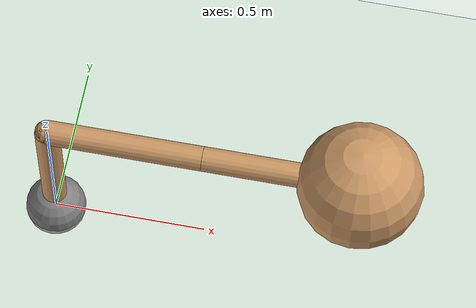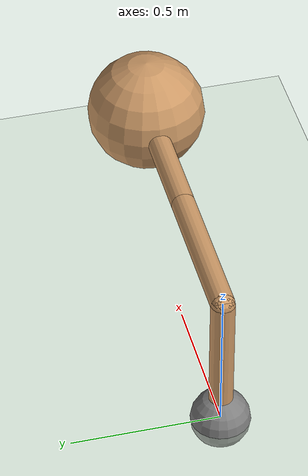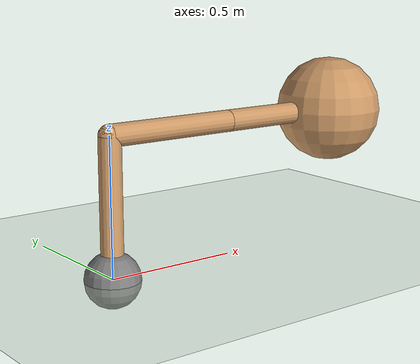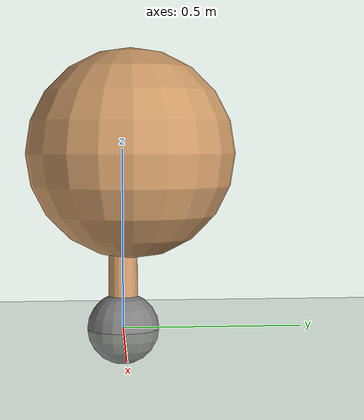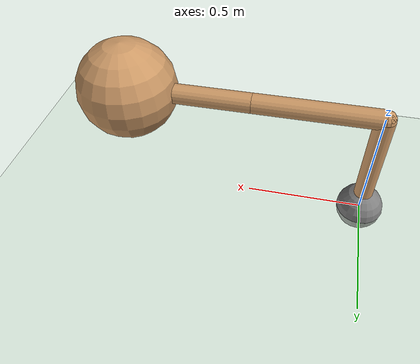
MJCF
<mujoco model="example">
    <compiler coordinate="global"/>
    <default>
        <geom rgba=".8 .6 .4 1"/>
    </default>
    <asset>
        <texture type="skybox" builtin="gradient" rgb1="1 1 1" rgb2=".6 .8 1"
                 width="256" height="256"/>
    </asset>
    <worldbody>
        <light pos="0 1 1" dir="0 -1 -1" diffuse="1 1 1"/>
        <geom name="floor" pos="0 0 0" rgba="0.8 0.9 0.8 1" size="10 10 10" type="plane"/>
        <body>
			<site name="world" size="0.1" pos="0 0 0" />

            <geom name="first_pole" type="capsule" fromto="0 0 0  0 0 0.5" size="0.04"/>
            <joint name='a' type="hinge" pos="0 0 0" axis="0 0 1" />
            <body name="second_pole">
				<inertial pos="0 0 0" mass="0.00000001" diaginertia="1e-008 1e-008 1e-008" />
                <geom type="capsule" fromto="0 0 0.5  0.5 0 0.5" size="0.04" name="second_pole"/>
                <joint name='b' type="hinge" pos="0 0 0.5" axis="0 1 0"/>
				<body name='third_pole'>
					<inertial pos="0 0 0" mass="0.00000001" diaginertia="1e-008 1e-008 1e-008" />
					<geom type="capsule" fromto="0.5 0 0.5  1 0 0.5" size="0.04" name="third_pole"/>
					<joint name='c' type="hinge" pos="0.5 0 0.5" axis="0 1 0"/>
					<site name="target" size="0.1" pos="1 0 0.5" />
					<body name="mass">
						<inertial pos="1 0 0.5" mass="1e-2" diaginertia="1e-008 1e-008 1e-008" />
						<geom type="sphere" pos="1 0 0.5" size="0.2" name="mass"/>
					</body>
				</body>
            </body>
        </body>
    </worldbody>
	<actuator>
		<motor joint="a"/>
		<motor joint="b"/>
		<motor joint="c"/>
	</actuator>

</mujoco>
